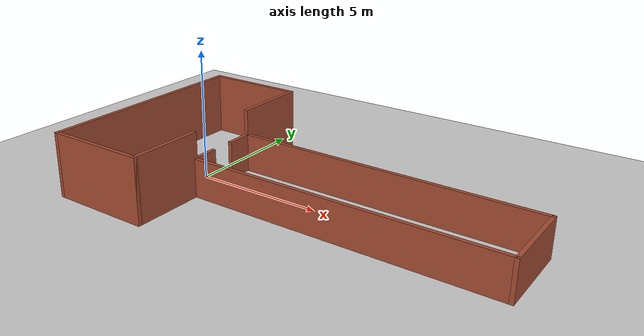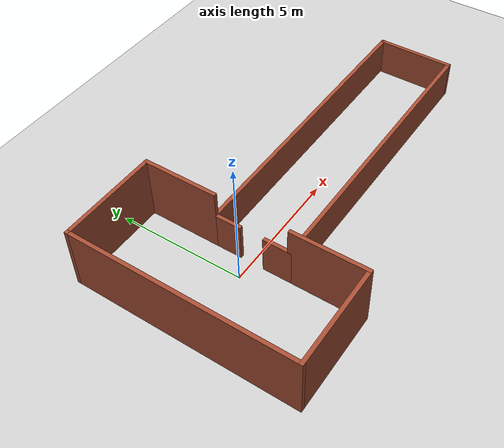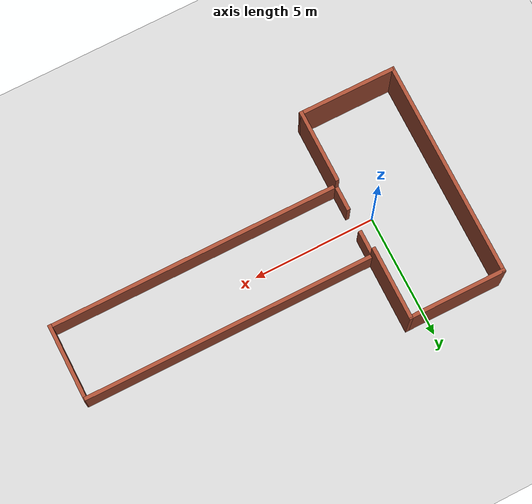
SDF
<sdf version="1.7">
 <world name="default">
  <light name="sun" type="directional">
   <pose>0 0 10 0 -0 0</pose>
   <diffuse>0.8 0.8 0.8 1</diffuse>
   <specular>0.2 0.2 0.2 1</specular>
   <attenuation>
    <range>1000</range>
    <constant>0.9</constant>
    <linear>0.01</linear>
    <quadratic>0.001</quadratic>
   </attenuation>
   <direction>-0.5 0.1 -0.9</direction>
   <spot><inner_angle>0</inner_angle><outer_angle>0</outer_angle><falloff>0</falloff></spot>
  </light>
  <model name="ground_plane">
   <static>1</static>
   <link name="link">
    <collision name="collision">
     <geometry><plane><normal>0 0 1</normal><size>100 100</size></plane></geometry>
     <surface><friction><ode><mu>100</mu><mu2>50</mu2></ode></friction></surface>
    </collision>
    <visual name="visual">
     <cast_shadows>0</cast_shadows>
     <geometry><plane><normal>0 0 1</normal><size>100 100</size></plane></geometry>
     <material>
      <script><uri>file://media/materials/scripts/gazebo.material</uri><name>Gazebo/Grey</name></script>
     </material>
    </visual>
   </link>
  </model>
  <gravity>0 0 -9.8</gravity>
  <magnetic_field>6e-06 2.3e-05 -4.2e-05</magnetic_field>
  <atmosphere type="adiabatic"/>
  <physics type="ode">
   <max_step_size>0.001</max_step_size>
   <real_time_factor>1</real_time_factor>
   <real_time_update_rate>1000</real_time_update_rate>
  </physics>
  <scene><ambient>0.4 0.4 0.4 1</ambient><background>0.7 0.7 0.7 1</background><shadows>1</shadows></scene>
  <audio><device>default</device></audio>
  <spherical_coordinates>
   <surface_model>EARTH_WGS84</surface_model>
   <latitude_deg>0</latitude_deg>
   <longitude_deg>0</longitude_deg>
   <elevation>0</elevation>
   <heading_deg>0</heading_deg>
  </spherical_coordinates>
  <model name="train_body">
   <pose>4.85058 -0.0058 0 0 0 -1.57514</pose>
   <link name="Wall_12">
    <pose>0 -4.0165 0 0 -0 3.14159</pose>
    <visual name="Wall_12_Visual_0">
     <pose>-1.01653 0 0.75 0 -0 0</pose>
     <geometry><box><size>1.12829 0.15 1.5</size></box></geometry>
     <material>
      <script><uri>file://media/materials/scripts/gazebo.material</uri><name>Gazebo/Bricks</name></script>
      <ambient>1 1 1 1</ambient>
     </material>
     <meta><layer>0</layer></meta>
    </visual>
    <collision name="Wall_12_Collision_0">
     <geometry><box><size>1.12829 0.15 1.5</size></box></geometry>
     <pose>-1.01653 0 0.75 0 -0 0</pose>
    </collision>
    <visual name="Wall_12_Visual_1">
     <pose>1.01414 0 0.75 0 -0 0</pose>
     <geometry><box><size>1.13307 0.15 1.5</size></box></geometry>
     <material>
      <script><uri>file://media/materials/scripts/gazebo.material</uri><name>Gazebo/Bricks</name></script>
      <ambient>1 1 1 1</ambient>
     </material>
     <meta><layer>0</layer></meta>
    </visual>
    <collision name="Wall_12_Collision_1">
     <geometry><box><size>1.13307 0.15 1.5</size></box></geometry>
     <pose>1.01414 0 0.75 0 -0 0</pose>
    </collision>
   </link>
   <link name="Wall_14">
    <collision name="Wall_14_Collision">
     <geometry><box><size>12 0.15 1.5</size></box></geometry>
     <pose>0 0 0.75 0 -0 0</pose>
    </collision>
    <visual name="Wall_14_Visual">
     <pose>0 0 0.75 0 -0 0</pose>
     <geometry><box><size>12 0.15 1.5</size></box></geometry>
     <material>
      <script><uri>file://media/materials/scripts/gazebo.material</uri><name>Gazebo/Bricks</name></script>
      <ambient>1 1 1 1</ambient>
     </material>
     <meta><layer>0</layer></meta>
    </visual>
    <pose>1.5055 1.9085 0 0 -0 1.5708</pose>
   </link>
   <link name="Wall_17">
    <collision name="Wall_17_Collision">
     <geometry><box><size>12 0.15 1.5</size></box></geometry>
     <pose>0 0 0.75 0 -0 0</pose>
    </collision>
    <visual name="Wall_17_Visual">
     <pose>0 0 0.75 0 -0 0</pose>
     <geometry><box><size>12 0.15 1.5</size></box></geometry>
     <material>
      <script><uri>file://media/materials/scripts/gazebo.material</uri><name>Gazebo/Bricks</name></script>
      <ambient>1 1 1 1</ambient>
     </material>
     <meta><layer>0</layer></meta>
    </visual>
    <pose>-1.50568 1.9085 0 0 -0 1.57083</pose>
   </link>
   <link name="Wall_19">
    <collision name="Wall_19_Collision">
     <geometry><box><size>3.15 0.15 1.5</size></box></geometry>
     <pose>0 0 0.75 0 -0 0</pose>
    </collision>
    <visual name="Wall_19_Visual">
     <pose>0 0 0.75 0 -0 0</pose>
     <geometry><box><size>3.15 0.15 1.5</size></box></geometry>
     <material>
      <script><uri>file://media/materials/scripts/gazebo.material</uri><name>Gazebo/Bricks</name></script>
      <ambient>1 1 1 1</ambient>
     </material>
     <meta><layer>0</layer></meta>
    </visual>
    <pose>0.0055 7.8665 0 0 -0 0</pose>
   </link>
   <link name="Wall_21">
    <collision name="Wall_21_Collision">
     <geometry><box><size>3 0.15 2.5</size></box></geometry>
     <pose>0 0 1.25 0 -0 0</pose>
    </collision>
    <visual name="Wall_21_Visual">
     <pose>0 0 1.25 0 -0 0</pose>
     <geometry><box><size>3 0.15 2.5</size></box></geometry>
     <material>
      <script><uri>file://media/materials/scripts/gazebo.material</uri><name>Gazebo/Bricks</name></script>
      <ambient>1 1 1 1</ambient>
     </material>
     <meta><layer>0</layer></meta>
    </visual>
    <pose>-2.9305 -4.0165 0 0 -0 3.14159</pose>
   </link>
   <link name="Wall_22">
    <collision name="Wall_22_Collision">
     <geometry><box><size>4 0.15 2.5</size></box></geometry>
     <pose>0 0 1.25 0 -0 0</pose>
    </collision>
    <visual name="Wall_22_Visual">
     <pose>0 0 1.25 0 -0 0</pose>
     <geometry><box><size>4 0.15 2.5</size></box></geometry>
     <material>
      <script><uri>file://media/materials/scripts/gazebo.material</uri><name>Gazebo/Bricks</name></script>
      <ambient>1 1 1 1</ambient>
     </material>
     <meta><layer>0</layer></meta>
    </visual>
    <pose>-4.3555 -5.9415 0 0 -0 -1.5708</pose>
   </link>
   <link name="Wall_24">
    <collision name="Wall_24_Collision">
     <geometry><box><size>3 0.15 2.5</size></box></geometry>
     <pose>0 0 1.25 0 -0 0</pose>
    </collision>
    <visual name="Wall_24_Visual">
     <pose>0 0 1.25 0 -0 0</pose>
     <geometry><box><size>3 0.15 2.5</size></box></geometry>
     <material>
      <script><uri>file://media/materials/scripts/gazebo.material</uri><name>Gazebo/Bricks</name></script>
      <ambient>1 1 1 1</ambient>
     </material>
     <meta><layer>0</layer></meta>
    </visual>
    <pose>2.9305 -4.0165 0 0 -0 0</pose>
   </link>
   <link name="Wall_25">
    <collision name="Wall_25_Collision">
     <geometry><box><size>4 0.15 2.5</size></box></geometry>
     <pose>0 0 1.25 0 -0 0</pose>
    </collision>
    <visual name="Wall_25_Visual">
     <pose>0 0 1.25 0 -0 0</pose>
     <geometry><box><size>4 0.15 2.5</size></box></geometry>
     <material>
      <script><uri>file://media/materials/scripts/gazebo.material</uri><name>Gazebo/Bricks</name></script>
      <ambient>1 1 1 1</ambient>
     </material>
     <meta><layer>0</layer></meta>
    </visual>
    <pose>4.3555 -5.9415 0 0 -0 -1.5708</pose>
   </link>
   <link name="Wall_26">
    <collision name="Wall_26_Collision">
     <geometry><box><size>8.861 0.15 2.5</size></box></geometry>
     <pose>0 0 1.25 0 -0 0</pose>
    </collision>
    <visual name="Wall_26_Visual">
     <pose>0 0 1.25 0 -0 0</pose>
     <geometry><box><size>8.861 0.15 2.5</size></box></geometry>
     <material>
      <script><uri>file://media/materials/scripts/gazebo.material</uri><name>Gazebo/Bricks</name></script>
      <ambient>1 1 1 1</ambient>
     </material>
     <meta><layer>0</layer></meta>
    </visual>
    <pose>0 -7.8665 0 0 -0 3.14159</pose>
   </link>
   <static>1</static>
  </model>
 </world>
</sdf>
